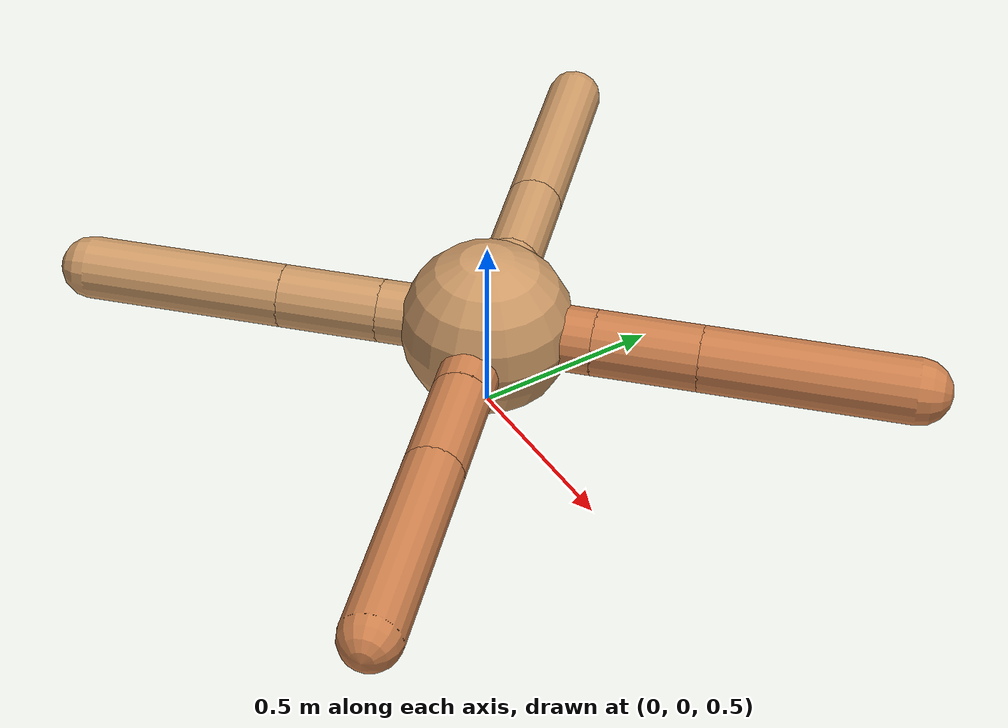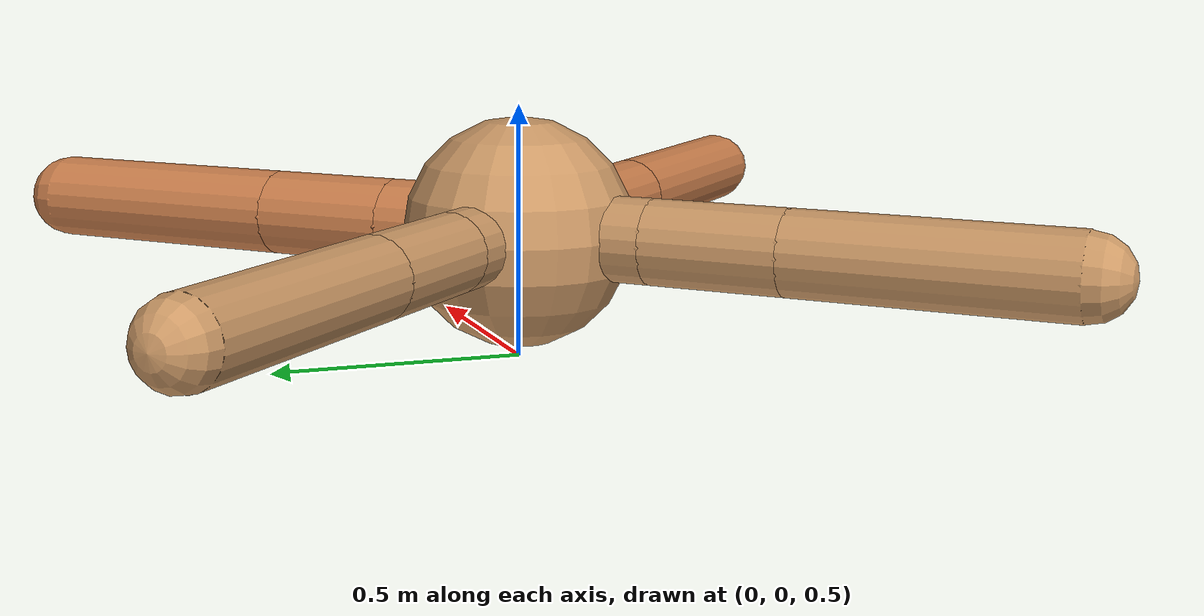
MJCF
<?xml version="1.0" ?>
<mujoco model="ant">

	<compiler angle="degree" coordinate="local" inertiafromgeom="true"/>

	<option integrator="RK4" timestep="0.01"/>

	<custom>

		<numeric data="0.0 0.0 0.55 1.0 0.0 0.0 0.0 0.0 1.0 0.0 -1.0 0.0 -1.0 0.0 1.0" name="init_qpos"/>

	</custom>

	<default>

		<joint armature="1" damping="1" limited="true"/>

		<geom conaffinity="0" condim="3" density="5.0" friction="1.5 0.1 0.1" margin="0.01" rgba="0.8 0.6 0.4 1"/>

	</default>

	<worldbody>

		<body name="torso" pos="0 0 0.75">

			<geom name="torso_geom" pos="0 0 0" size="0.22801685067763056" type="sphere"/>

			<!--joint armature="0" damping="0" limited="false" margin="0.01" name="root" pos="0 0 0" type="free"/-->

			<body name="front_left_leg" pos="0 0 0">

				<geom fromto="0 0 0 0.2 0.2 0" name="aux_1_geom" size="0.08651395286640819" type="capsule" rgba=".8 .5 .3 1"/>

				<body name="aux_1" pos="0.2 0.2 0">

					<joint axis="0 0 1" name="hip_1" pos="0.0 0.0 0.0" range="-40 40" type="hinge"/>

					<geom fromto="0 0 0 0.19502815296403292 0.19502815296403292 0" name="left_leg_geom" size="0.08651395286640819" type="capsule" rgba=".8 .5 .3 1"/>

					<body pos="0.19502815296403292 0.19502815296403292 0" name="front_left_foot">

						<joint axis="-1 1 0" name="ankle_1" pos="0.0 0.0 0.0" range="30 100" type="hinge"/>

						<geom fromto="0 0 0 0.39005630592806584 0.39005630592806584 0" name="left_ankle_geom" size="0.08651395286640819" type="capsule" rgba=".8 .5 .3 1"/>

					</body>

				</body>

			</body>

			<body name="front_right_leg" pos="0 0 0">

				<geom fromto="0 0 0 -0.2 0.2 0" name="aux_2_geom" size="0.07716760021777422" type="capsule"/>

				<body name="aux_2" pos="-0.2 0.2 0">

					<joint axis="0 0 1" name="hip_2" pos="0.0 0.0 0.0" range="-40 40" type="hinge"/>

					<geom fromto="0 0 0 -0.1931838120646838 0.1931838120646838 0" name="right_leg_geom" size="0.07716760021777422" type="capsule"/>

					<body pos="-0.1931838120646838 0.1931838120646838 0" name="front_right_foot">

						<joint axis="1 1 0" name="ankle_2" pos="0.0 0.0 0.0" range="-100 -30" type="hinge"/>

						<geom fromto="0 0 0 -0.3863676241293676 0.3863676241293676 0" name="right_ankle_geom" size="0.07716760021777422" type="capsule"/>

					</body>

				</body>

			</body>

			<body name="left_back_leg" pos="0 0 0">

				<geom fromto="0 0 0 -0.2 -0.2 0" name="aux_3_geom" size="0.08326162887933684" type="capsule"/>

				<body name="aux_3" pos="-0.2 -0.2 0">

					<joint axis="0 0 1" name="hip_3" pos="0.0 0.0 0.0" range="-40 40" type="hinge"/>

					<geom fromto="0 0 0 -0.18940573990969517 -0.18940573990969517 0" name="back_leg_geom" size="0.08326162887933684" type="capsule"/>

					<body pos="-0.18940573990969517 -0.18940573990969517 0" name="left_back_foot">

						<joint axis="-1 1 0" name="ankle_3" pos="0.0 0.0 0.0" range="-100 -30" type="hinge"/>

						<geom fromto="0 0 0 -0.37881147981939034 -0.37881147981939034 0" name="third_ankle_geom" size="0.08326162887933684" type="capsule"/>

					</body>

				</body>

			</body>

			<body name="right_back_leg" pos="0 0 0">

				<geom fromto="0 0 0 0.2 -0.2 0" name="aux_4_geom" size="0.07873171196678565" type="capsule" rgba=".8 .5 .3 1"/>

				<body name="aux_4" pos="0.2 -0.2 0">

					<joint axis="0 0 1" name="hip_4" pos="0.0 0.0 0.0" range="-40 40" type="hinge"/>

					<geom fromto="0 0 0 0.19566221259544617 -0.19566221259544617 0" name="rightback_leg_geom" size="0.07873171196678565" type="capsule" rgba=".8 .5 .3 1"/>

					<body pos="0.19566221259544617 -0.19566221259544617 0" name="right_back_foot">

						<joint axis="1 1 0" name="ankle_4" pos="0.0 0.0 0.0" range="30 100" type="hinge"/>

						<geom fromto="0 0 0 0.39132442519089233 -0.39132442519089233 0" name="fourth_ankle_geom" size="0.07873171196678565" type="capsule" rgba=".8 .5 .3 1"/>

					</body>

				</body>

			</body>

		</body>

	</worldbody>

	<actuator>

		<motor ctrllimited="true" ctrlrange="-1.0 1.0" joint="hip_4" gear="150"/>

		<motor ctrllimited="true" ctrlrange="-1.0 1.0" joint="ankle_4" gear="150"/>

		<motor ctrllimited="true" ctrlrange="-1.0 1.0" joint="hip_1" gear="150"/>

		<motor ctrllimited="true" ctrlrange="-1.0 1.0" joint="ankle_1" gear="150"/>

		<motor ctrllimited="true" ctrlrange="-1.0 1.0" joint="hip_2" gear="150"/>

		<motor ctrllimited="true" ctrlrange="-1.0 1.0" joint="ankle_2" gear="150"/>

		<motor ctrllimited="true" ctrlrange="-1.0 1.0" joint="hip_3" gear="150"/>

		<motor ctrllimited="true" ctrlrange="-1.0 1.0" joint="ankle_3" gear="150"/>

	</actuator>

</mujoco>
